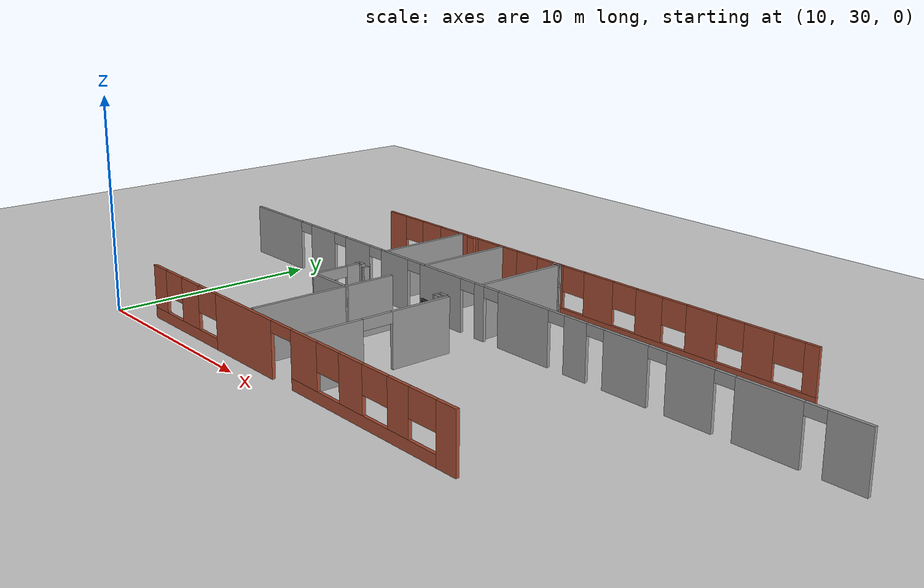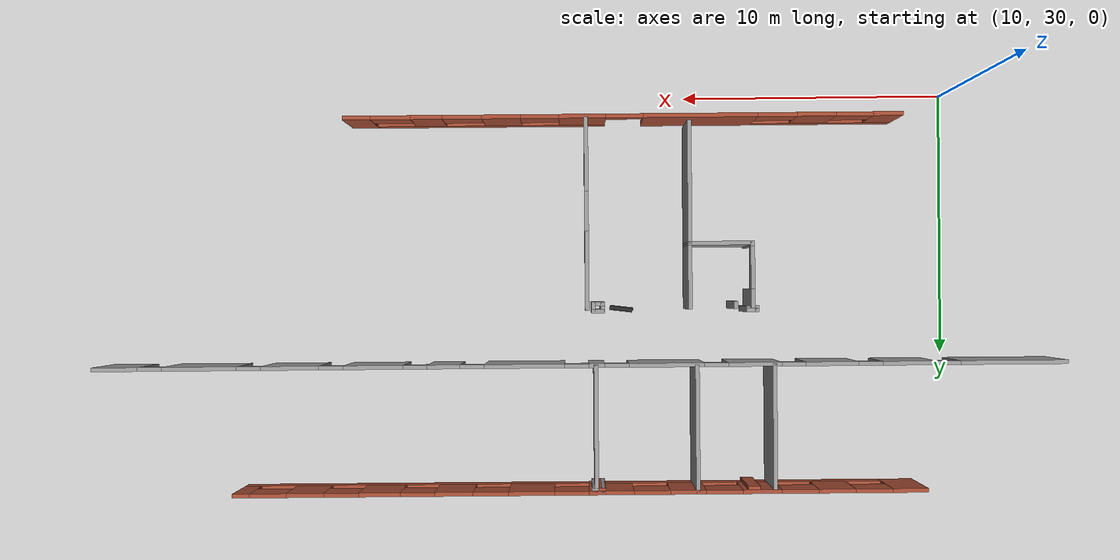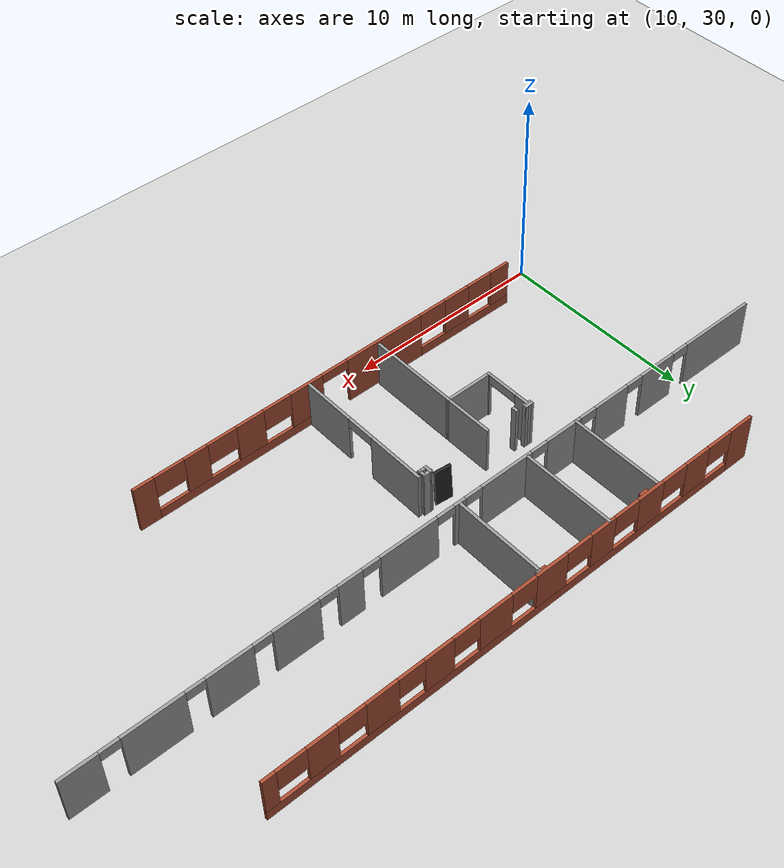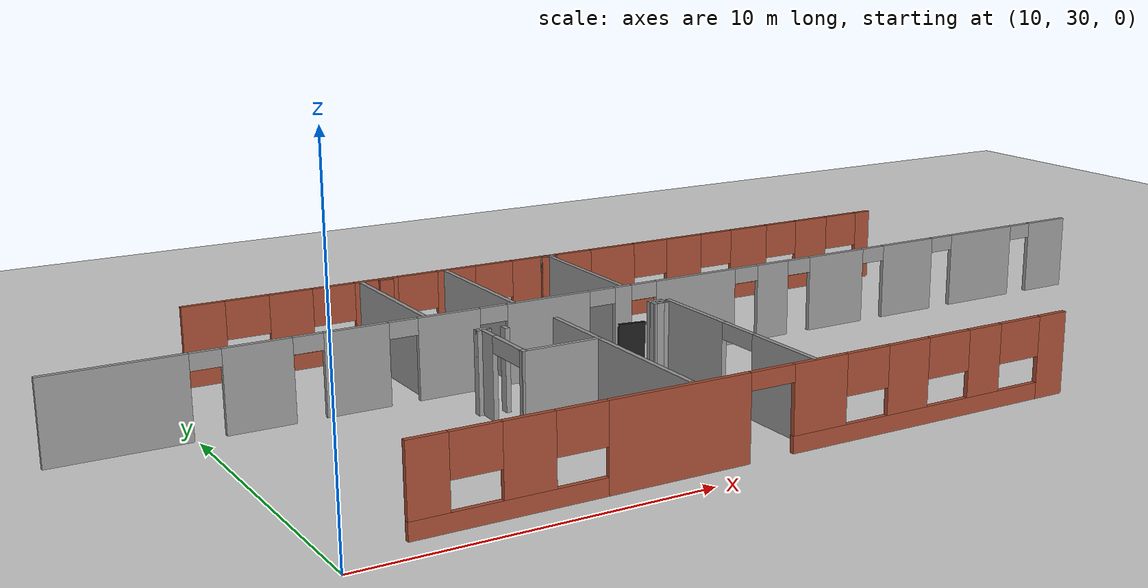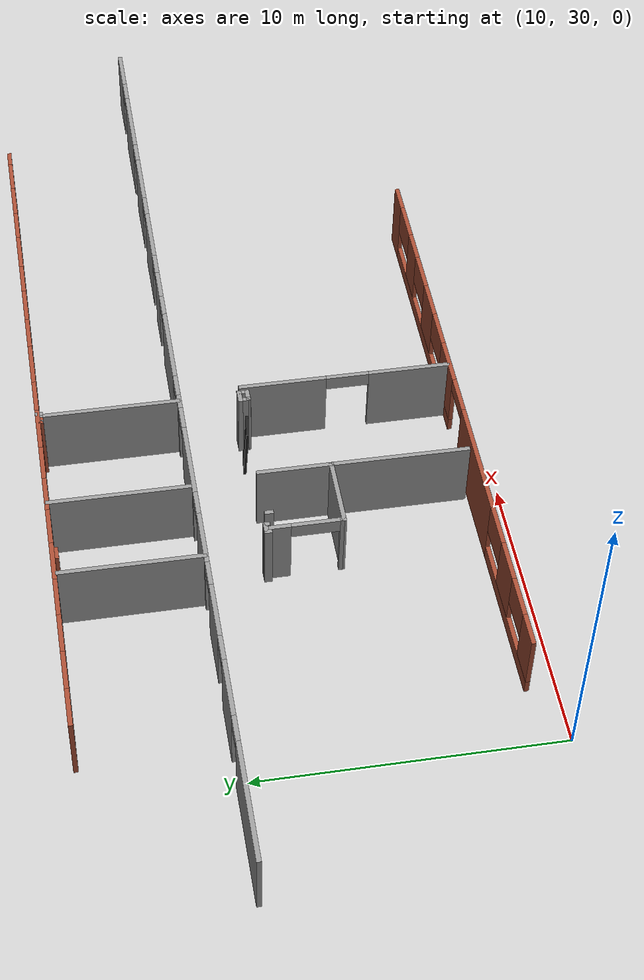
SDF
<sdf version="1.6">
 <world name="default">
  <model name="ground_plane">
   <static>1</static>
   <link name="link">
    <collision name="collision">
     <geometry><plane><normal>0 0 1</normal><size>100 100</size></plane></geometry>
     <surface><friction><ode><mu>100</mu><mu2>50</mu2></ode></friction></surface>
    </collision>
    <visual name="visual">
     <cast_shadows>0</cast_shadows>
     <geometry><plane><normal>0 0 1</normal><size>100 100</size></plane></geometry>
     <material>
      <script><uri>file://media/materials/scripts/gazebo.material</uri><name>Gazebo/Grey</name></script>
     </material>
    </visual>
   </link>
  </model>
  <model name="CVSSP">
   <pose>23.8714 24.094 0 0 -0 0</pose>
   <link name="Wall_21">
    <pose>-6.21845 12.8269 0 0 0 -1.57055</pose>
    <visual name="Wall_21_Visual_0">
     <pose>-0.893143 0 1.25 0 -0 0</pose>
     <geometry><box><size>0.719046 0.15 2.5</size></box></geometry>
     <material>
      <script><uri>file://media/materials/scripts/gazebo.material</uri><name>Gazebo/Grey</name></script>
      <ambient>0.588235 0.588235 0.588235 1</ambient>
     </material>
    </visual>
    <collision name="Wall_21_Collision_0">
     <geometry><box><size>0.719046 0.15 2.5</size></box></geometry>
     <pose>-0.893143 0 1.25 0 -0 0</pose>
    </collision>
    <visual name="Wall_21_Visual_1">
     <pose>1.15058 0 1.25 0 -0 0</pose>
     <geometry><box><size>0.204165 0.15 2.5</size></box></geometry>
     <material>
      <script><uri>file://media/materials/scripts/gazebo.material</uri><name>Gazebo/Grey</name></script>
      <ambient>0.588235 0.588235 0.588235 1</ambient>
     </material>
    </visual>
    <collision name="Wall_21_Collision_1">
     <geometry><box><size>0.204165 0.15 2.5</size></box></geometry>
     <pose>1.15058 0 1.25 0 -0 0</pose>
    </collision>
    <visual name="Wall_21_Visual_2">
     <pose>0.257441 0 2.25 0 -0 0</pose>
     <geometry><box><size>1.58212 0.15 0.5</size></box></geometry>
     <material>
      <script><uri>file://media/materials/scripts/gazebo.material</uri><name>Gazebo/Grey</name></script>
      <ambient>0.588235 0.588235 0.588235 1</ambient>
     </material>
    </visual>
    <collision name="Wall_21_Collision_2">
     <geometry><box><size>1.58212 0.15 0.5</size></box></geometry>
     <pose>0.257441 0 2.25 0 -0 0</pose>
    </collision>
   </link>
   <link name="Wall_24">
    <collision name="Wall_24_Collision">
     <geometry><box><size>2.49412 0.15 2.5</size></box></geometry>
     <pose>0 0 1.25 0 -0 0</pose>
    </collision>
    <visual name="Wall_24_Visual">
     <pose>0 0 1.25 0 -0 0</pose>
     <geometry><box><size>2.49412 0.15 2.5</size></box></geometry>
     <material>
      <script><uri>file://media/materials/scripts/gazebo.material</uri><name>Gazebo/Grey</name></script>
      <ambient>0.588235 0.588235 0.588235 1</ambient>
     </material>
    </visual>
    <pose>-5.0461 11.6485 0 0 0 -0.000618</pose>
   </link>
   <link name="Wall_25">
    <collision name="Wall_25_Collision">
     <geometry><box><size>2.54698 0.15 2.5</size></box></geometry>
     <pose>0 0 1.25 0 -0 0</pose>
    </collision>
    <visual name="Wall_25_Visual">
     <pose>0 0 1.25 0 -0 0</pose>
     <geometry><box><size>2.54698 0.15 2.5</size></box></geometry>
     <material>
      <script><uri>file://media/materials/scripts/gazebo.material</uri><name>Gazebo/Grey</name></script>
      <ambient>0.588235 0.588235 0.588235 1</ambient>
     </material>
    </visual>
    <pose>-3.87405 12.8463 0 0 -0 1.5708</pose>
   </link>
   <link name="Wall_27">
    <collision name="Wall_27_Collision">
     <geometry><box><size>4.69046 0.15 2.5</size></box></geometry>
     <pose>0 0 1.25 0 -0 0</pose>
    </collision>
    <visual name="Wall_27_Visual">
     <pose>0 0 1.25 0 -0 0</pose>
     <geometry><box><size>4.69046 0.15 2.5</size></box></geometry>
     <material>
      <script><uri>file://media/materials/scripts/gazebo.material</uri><name>Gazebo/Grey</name></script>
      <ambient>0.588235 0.588235 0.588235 1</ambient>
     </material>
    </visual>
    <pose>-3.88025 9.37755 0 0 0 -1.57353</pose>
   </link>
   <link name="Wall_29">
    <pose>-0.023055 10.5087 0 0 0 -1.5708</pose>
    <visual name="Wall_29_Visual_0">
     <pose>-2.1277 0 1.25 0 -0 0</pose>
     <geometry><box><size>2.99461 0.15 2.5</size></box></geometry>
     <material>
      <script><uri>file://media/materials/scripts/gazebo.material</uri><name>Gazebo/Grey</name></script>
      <ambient>0.588235 0.588235 0.588235 1</ambient>
     </material>
    </visual>
    <collision name="Wall_29_Collision_0">
     <geometry><box><size>2.99461 0.15 2.5</size></box></geometry>
     <pose>-2.1277 0 1.25 0 -0 0</pose>
    </collision>
    <visual name="Wall_29_Visual_1">
     <pose>2.22714 0 1.25 0 -0 0</pose>
     <geometry><box><size>2.79571 0.15 2.5</size></box></geometry>
     <material>
      <script><uri>file://media/materials/scripts/gazebo.material</uri><name>Gazebo/Grey</name></script>
      <ambient>0.588235 0.588235 0.588235 1</ambient>
     </material>
    </visual>
    <collision name="Wall_29_Collision_1">
     <geometry><box><size>2.79571 0.15 2.5</size></box></geometry>
     <pose>2.22714 0 1.25 0 -0 0</pose>
    </collision>
    <visual name="Wall_29_Visual_2">
     <pose>0.099447 0 2.25 0 -0 0</pose>
     <geometry><box><size>1.45968 0.15 0.5</size></box></geometry>
     <material>
      <script><uri>file://media/materials/scripts/gazebo.material</uri><name>Gazebo/Grey</name></script>
      <ambient>0.588235 0.588235 0.588235 1</ambient>
     </material>
    </visual>
    <collision name="Wall_29_Collision_2">
     <geometry><box><size>1.45968 0.15 0.5</size></box></geometry>
     <pose>0.099447 0 2.25 0 -0 0</pose>
    </collision>
   </link>
   <link name="Wall_303">
    <pose>0.29478 20.9408 0 0 -0 0</pose>
    <visual name="Wall_303_Visual_0">
     <pose>-12.3344 0 1.25 0 -0 0</pose>
     <geometry><box><size>1.33119 0.15 2.5</size></box></geometry>
     <material>
      <script><uri>file://media/materials/scripts/gazebo.material</uri><name>Gazebo/Bricks</name></script>
      <ambient>1 1 1 1</ambient>
     </material>
    </visual>
    <collision name="Wall_303_Collision_0">
     <geometry><box><size>1.33119 0.15 2.5</size></box></geometry>
     <pose>-12.3344 0 1.25 0 -0 0</pose>
    </collision>
    <visual name="Wall_303_Visual_1">
     <pose>0.665598 0 0.25 0 -0 0</pose>
     <geometry><box><size>24.6688 0.15 0.5</size></box></geometry>
     <material>
      <script><uri>file://media/materials/scripts/gazebo.material</uri><name>Gazebo/Bricks</name></script>
      <ambient>1 1 1 1</ambient>
     </material>
    </visual>
    <collision name="Wall_303_Collision_1">
     <geometry><box><size>24.6688 0.15 0.5</size></box></geometry>
     <pose>0.665598 0 0.25 0 -0 0</pose>
    </collision>
    <visual name="Wall_303_Visual_2">
     <pose>-9.60766 0 1.5 0 -0 0</pose>
     <geometry><box><size>1.38884 0.15 2</size></box></geometry>
     <material>
      <script><uri>file://media/materials/scripts/gazebo.material</uri><name>Gazebo/Bricks</name></script>
      <ambient>1 1 1 1</ambient>
     </material>
    </visual>
    <collision name="Wall_303_Collision_2">
     <geometry><box><size>1.38884 0.15 2</size></box></geometry>
     <pose>-9.60766 0 1.5 0 -0 0</pose>
    </collision>
    <visual name="Wall_303_Visual_3">
     <pose>-6.80389 0 1.5 0 -0 0</pose>
     <geometry><box><size>1.45124 0.15 2</size></box></geometry>
     <material>
      <script><uri>file://media/materials/scripts/gazebo.material</uri><name>Gazebo/Bricks</name></script>
      <ambient>1 1 1 1</ambient>
     </material>
    </visual>
    <collision name="Wall_303_Collision_3">
     <geometry><box><size>1.45124 0.15 2</size></box></geometry>
     <pose>-6.80389 0 1.5 0 -0 0</pose>
    </collision>
    <visual name="Wall_303_Visual_4">
     <pose>-4.03476 0 1.5 0 -0 0</pose>
     <geometry><box><size>1.34223 0.15 2</size></box></geometry>
     <material>
      <script><uri>file://media/materials/scripts/gazebo.material</uri><name>Gazebo/Bricks</name></script>
      <ambient>1 1 1 1</ambient>
     </material>
    </visual>
    <collision name="Wall_303_Collision_4">
     <geometry><box><size>1.34223 0.15 2</size></box></geometry>
     <pose>-4.03476 0 1.5 0 -0 0</pose>
    </collision>
    <visual name="Wall_303_Visual_5">
     <pose>-1.16996 0 1.5 0 -0 0</pose>
     <geometry><box><size>1.6766 0.15 2</size></box></geometry>
     <material>
      <script><uri>file://media/materials/scripts/gazebo.material</uri><name>Gazebo/Bricks</name></script>
      <ambient>1 1 1 1</ambient>
     </material>
    </visual>
    <collision name="Wall_303_Collision_5">
     <geometry><box><size>1.6766 0.15 2</size></box></geometry>
     <pose>-1.16996 0 1.5 0 -0 0</pose>
    </collision>
    <visual name="Wall_303_Visual_6">
     <pose>1.82803 0 1.5 0 -0 0</pose>
     <geometry><box><size>1.7106 0.15 2</size></box></geometry>
     <material>
      <script><uri>file://media/materials/scripts/gazebo.material</uri><name>Gazebo/Bricks</name></script>
      <ambient>1 1 1 1</ambient>
     </material>
    </visual>
    <collision name="Wall_303_Collision_6">
     <geometry><box><size>1.7106 0.15 2</size></box></geometry>
     <pose>1.82803 0 1.5 0 -0 0</pose>
    </collision>
    <visual name="Wall_303_Visual_7">
     <pose>4.72401 0 1.5 0 -0 0</pose>
     <geometry><box><size>1.43857 0.15 2</size></box></geometry>
     <material>
      <script><uri>file://media/materials/scripts/gazebo.material</uri><name>Gazebo/Bricks</name></script>
      <ambient>1 1 1 1</ambient>
     </material>
    </visual>
    <collision name="Wall_303_Collision_7">
     <geometry><box><size>1.43857 0.15 2</size></box></geometry>
     <pose>4.72401 0 1.5 0 -0 0</pose>
    </collision>
    <visual name="Wall_303_Visual_8">
     <pose>7.50097 0 1.5 0 -0 0</pose>
     <geometry><box><size>1.55192 0.15 2</size></box></geometry>
     <material>
      <script><uri>file://media/materials/scripts/gazebo.material</uri><name>Gazebo/Bricks</name></script>
      <ambient>1 1 1 1</ambient>
     </material>
    </visual>
    <collision name="Wall_303_Collision_8">
     <geometry><box><size>1.55192 0.15 2</size></box></geometry>
     <pose>7.50097 0 1.5 0 -0 0</pose>
    </collision>
    <visual name="Wall_303_Visual_9">
     <pose>10.2921 0 1.5 0 -0 0</pose>
     <geometry><box><size>1.3989 0.15 2</size></box></geometry>
     <material>
      <script><uri>file://media/materials/scripts/gazebo.material</uri><name>Gazebo/Bricks</name></script>
      <ambient>1 1 1 1</ambient>
     </material>
    </visual>
    <collision name="Wall_303_Collision_9">
     <geometry><box><size>1.3989 0.15 2</size></box></geometry>
     <pose>10.2921 0 1.5 0 -0 0</pose>
    </collision>
    <visual name="Wall_303_Visual_10">
     <pose>12.682 0 1.5 0 -0 0</pose>
     <geometry><box><size>0.636054 0.15 2</size></box></geometry>
     <material>
      <script><uri>file://media/materials/scripts/gazebo.material</uri><name>Gazebo/Bricks</name></script>
      <ambient>1 1 1 1</ambient>
     </material>
    </visual>
    <collision name="Wall_303_Collision_10">
     <geometry><box><size>0.636054 0.15 2</size></box></geometry>
     <pose>12.682 0 1.5 0 -0 0</pose>
    </collision>
    <visual name="Wall_303_Visual_11">
     <pose>-10.9854 0 1.9 0 -0 0</pose>
     <geometry><box><size>1.36673 0.15 1.2</size></box></geometry>
     <material>
      <script><uri>file://media/materials/scripts/gazebo.material</uri><name>Gazebo/Bricks</name></script>
      <ambient>1 1 1 1</ambient>
     </material>
    </visual>
    <collision name="Wall_303_Collision_11">
     <geometry><box><size>1.36673 0.15 1.2</size></box></geometry>
     <pose>-10.9854 0 1.9 0 -0 0</pose>
    </collision>
    <visual name="Wall_303_Visual_12">
     <pose>-8.22138 0 1.9 0 -0 0</pose>
     <geometry><box><size>1.38373 0.15 1.2</size></box></geometry>
     <material>
      <script><uri>file://media/materials/scripts/gazebo.material</uri><name>Gazebo/Bricks</name></script>
      <ambient>1 1 1 1</ambient>
     </material>
    </visual>
    <collision name="Wall_303_Collision_12">
     <geometry><box><size>1.38373 0.15 1.2</size></box></geometry>
     <pose>-8.22138 0 1.9 0 -0 0</pose>
    </collision>
    <visual name="Wall_303_Visual_13">
     <pose>-5.39208 0 1.9 0 -0 0</pose>
     <geometry><box><size>1.37239 0.15 1.2</size></box></geometry>
     <material>
      <script><uri>file://media/materials/scripts/gazebo.material</uri><name>Gazebo/Bricks</name></script>
      <ambient>1 1 1 1</ambient>
     </material>
    </visual>
    <collision name="Wall_303_Collision_13">
     <geometry><box><size>1.37239 0.15 1.2</size></box></geometry>
     <pose>-5.39208 0 1.9 0 -0 0</pose>
    </collision>
    <visual name="Wall_303_Visual_14">
     <pose>-2.68595 0 1.9 0 -0 0</pose>
     <geometry><box><size>1.35539 0.15 1.2</size></box></geometry>
     <material>
      <script><uri>file://media/materials/scripts/gazebo.material</uri><name>Gazebo/Bricks</name></script>
      <ambient>1 1 1 1</ambient>
     </material>
    </visual>
    <collision name="Wall_303_Collision_14">
     <geometry><box><size>1.35539 0.15 1.2</size></box></geometry>
     <pose>-2.68595 0 1.9 0 -0 0</pose>
    </collision>
    <visual name="Wall_303_Visual_15">
     <pose>0.320535 0 1.9 0 -0 0</pose>
     <geometry><box><size>1.30439 0.15 1.2</size></box></geometry>
     <material>
      <script><uri>file://media/materials/scripts/gazebo.material</uri><name>Gazebo/Bricks</name></script>
      <ambient>1 1 1 1</ambient>
     </material>
    </visual>
    <collision name="Wall_303_Collision_15">
     <geometry><box><size>1.30439 0.15 1.2</size></box></geometry>
     <pose>0.320535 0 1.9 0 -0 0</pose>
    </collision>
    <visual name="Wall_303_Visual_16">
     <pose>3.34402 0 1.9 0 -0 0</pose>
     <geometry><box><size>1.32139 0.15 1.2</size></box></geometry>
     <material>
      <script><uri>file://media/materials/scripts/gazebo.material</uri><name>Gazebo/Bricks</name></script>
      <ambient>1 1 1 1</ambient>
     </material>
    </visual>
    <collision name="Wall_303_Collision_16">
     <geometry><box><size>1.32139 0.15 1.2</size></box></geometry>
     <pose>3.34402 0 1.9 0 -0 0</pose>
    </collision>
    <visual name="Wall_303_Visual_17">
     <pose>6.08415 0 1.9 0 -0 0</pose>
     <geometry><box><size>1.28172 0.15 1.2</size></box></geometry>
     <material>
      <script><uri>file://media/materials/scripts/gazebo.material</uri><name>Gazebo/Bricks</name></script>
      <ambient>1 1 1 1</ambient>
     </material>
    </visual>
    <collision name="Wall_303_Collision_17">
     <geometry><box><size>1.28172 0.15 1.2</size></box></geometry>
     <pose>6.08415 0 1.9 0 -0 0</pose>
    </collision>
    <visual name="Wall_303_Visual_18">
     <pose>8.93479 0 1.9 0 -0 0</pose>
     <geometry><box><size>1.31572 0.15 1.2</size></box></geometry>
     <material>
      <script><uri>file://media/materials/scripts/gazebo.material</uri><name>Gazebo/Bricks</name></script>
      <ambient>1 1 1 1</ambient>
     </material>
    </visual>
    <collision name="Wall_303_Collision_18">
     <geometry><box><size>1.31572 0.15 1.2</size></box></geometry>
     <pose>8.93479 0 1.9 0 -0 0</pose>
    </collision>
    <visual name="Wall_303_Visual_19">
     <pose>11.6777 0 1.9 0 -0 0</pose>
     <geometry><box><size>1.37239 0.15 1.2</size></box></geometry>
     <material>
      <script><uri>file://media/materials/scripts/gazebo.material</uri><name>Gazebo/Bricks</name></script>
      <ambient>1 1 1 1</ambient>
     </material>
    </visual>
    <collision name="Wall_303_Collision_19">
     <geometry><box><size>1.37239 0.15 1.2</size></box></geometry>
     <pose>11.6777 0 1.9 0 -0 0</pose>
    </collision>
   </link>
   <link name="Wall_315">
    <collision name="Wall_315_Collision">
     <geometry><box><size>4.75 0.15 2.5</size></box></geometry>
     <pose>0 0 1.25 0 -0 0</pose>
    </collision>
    <visual name="Wall_315_Visual">
     <pose>0 0 1.25 0 -0 0</pose>
     <geometry><box><size>4.75 0.15 2.5</size></box></geometry>
     <material>
      <script><uri>file://media/materials/scripts/gazebo.material</uri><name>Gazebo/Grey</name></script>
      <ambient>0.588235 0.588235 0.588235 1</ambient>
     </material>
    </visual>
    <pose>-7.00685 18.5251 0 0 -0 1.5708</pose>
   </link>
   <link name="Wall_318">
    <collision name="Wall_318_Collision">
     <geometry><box><size>4.79 0.15 2.5</size></box></geometry>
     <pose>0 0 1.25 0 -0 0</pose>
    </collision>
    <visual name="Wall_318_Visual">
     <pose>0 0 1.25 0 -0 0</pose>
     <geometry><box><size>4.79 0.15 2.5</size></box></geometry>
     <material>
      <script><uri>file://media/materials/scripts/gazebo.material</uri><name>Gazebo/Grey</name></script>
      <ambient>1 1 1 1</ambient>
     </material>
    </visual>
    <pose>-4.1133 18.5854 0 0 0 -1.5708</pose>
   </link>
   <link name="Wall_320">
    <collision name="Wall_320_Collision">
     <geometry><box><size>4.75 0.15 2.5</size></box></geometry>
     <pose>0 0 1.25 0 -0 0</pose>
    </collision>
    <visual name="Wall_320_Visual">
     <pose>0 0 1.25 0 -0 0</pose>
     <geometry><box><size>4.75 0.15 2.5</size></box></geometry>
     <material>
      <script><uri>file://media/materials/scripts/gazebo.material</uri><name>Gazebo/Grey</name></script>
      <ambient>0.588235 0.588235 0.588235 1</ambient>
     </material>
    </visual>
    <pose>-0.323303 18.5354 0 0 -0 1.5708</pose>
   </link>
   <link name="Wall_326">
    <collision name="Wall_326_Collision">
     <geometry><box><size>0.41 0.15 2.5</size></box></geometry>
     <pose>0 0 1.25 0 -0 0</pose>
    </collision>
    <visual name="Wall_326_Visual">
     <pose>0 0 1.25 0 -0 0</pose>
     <geometry><box><size>0.41 0.15 2.5</size></box></geometry>
     <material>
      <script><uri>file://media/materials/scripts/gazebo.material</uri><name>Gazebo/Bricks</name></script>
      <ambient>1 1 1 1</ambient>
     </material>
    </visual>
    <pose>-0.453303 20.8354 0 0 -0 3.14159</pose>
   </link>
   <link name="Wall_327">
    <collision name="Wall_327_Collision">
     <geometry><box><size>0.25 0.15 2.5</size></box></geometry>
     <pose>0 0 1.25 0 -0 0</pose>
    </collision>
    <visual name="Wall_327_Visual">
     <pose>0 0 1.25 0 -0 0</pose>
     <geometry><box><size>0.25 0.15 2.5</size></box></geometry>
     <material>
      <script><uri>file://media/materials/scripts/gazebo.material</uri><name>Gazebo/Grey</name></script>
      <ambient>1 1 1 1</ambient>
     </material>
    </visual>
    <pose>-0.583303 20.8854 0 0 -0 1.5708</pose>
   </link>
   <link name="Wall_329">
    <collision name="Wall_329_Collision">
     <geometry><box><size>0.25 0.15 2.5</size></box></geometry>
     <pose>0 0 1.25 0 -0 0</pose>
    </collision>
    <visual name="Wall_329_Visual">
     <pose>0 0 1.25 0 -0 0</pose>
     <geometry><box><size>0.25 0.15 2.5</size></box></geometry>
     <material>
      <script><uri>file://media/materials/scripts/gazebo.material</uri><name>Gazebo/Grey</name></script>
      <ambient>1 1 1 1</ambient>
     </material>
    </visual>
    <pose>-0.273303 20.8354 0 0 -0 0</pose>
   </link>
   <link name="Wall_330">
    <collision name="Wall_330_Collision">
     <geometry><box><size>0.25 0.15 2.5</size></box></geometry>
     <pose>0 0 1.25 0 -0 0</pose>
    </collision>
    <visual name="Wall_330_Visual">
     <pose>0 0 1.25 0 -0 0</pose>
     <geometry><box><size>0.25 0.15 2.5</size></box></geometry>
     <material>
      <script><uri>file://media/materials/scripts/gazebo.material</uri><name>Gazebo/Grey</name></script>
      <ambient>1 1 1 1</ambient>
     </material>
    </visual>
    <pose>-0.223303 20.8854 0 0 -0 1.5708</pose>
   </link>
   <link name="Wall_46">
    <pose>-1.40579 6.86917 0 0 -0 3.14155</pose>
    <visual name="Wall_46_Visual_0">
     <pose>-9.95927 0 1.25 0 -0 0</pose>
     <geometry><box><size>1.03804 0.15 2.5</size></box></geometry>
     <material>
      <script><uri>file://media/materials/scripts/gazebo.material</uri><name>Gazebo/Bricks</name></script>
      <ambient>1 1 1 1</ambient>
     </material>
    </visual>
    <collision name="Wall_46_Collision_0">
     <geometry><box><size>1.03804 0.15 2.5</size></box></geometry>
     <pose>-9.95927 0 1.25 0 -0 0</pose>
    </collision>
    <visual name="Wall_46_Visual_1">
     <pose>2.91124 0 1.25 0 -0 0</pose>
     <geometry><box><size>4.28444 0.15 2.5</size></box></geometry>
     <material>
      <script><uri>file://media/materials/scripts/gazebo.material</uri><name>Gazebo/Bricks</name></script>
      <ambient>1 1 1 1</ambient>
     </material>
    </visual>
    <collision name="Wall_46_Collision_1">
     <geometry><box><size>4.28444 0.15 2.5</size></box></geometry>
     <pose>2.91124 0 1.25 0 -0 0</pose>
    </collision>
    <visual name="Wall_46_Visual_2">
     <pose>-5.03718 0 0.25 0 -0 0</pose>
     <geometry><box><size>8.80612 0.15 0.5</size></box></geometry>
     <material>
      <script><uri>file://media/materials/scripts/gazebo.material</uri><name>Gazebo/Bricks</name></script>
      <ambient>1 1 1 1</ambient>
     </material>
    </visual>
    <collision name="Wall_46_Collision_2">
     <geometry><box><size>8.80612 0.15 0.5</size></box></geometry>
     <pose>-5.03718 0 0.25 0 -0 0</pose>
    </collision>
    <visual name="Wall_46_Visual_3">
     <pose>7.76588 0 0.25 0 -0 0</pose>
     <geometry><box><size>5.42482 0.15 0.5</size></box></geometry>
     <material>
      <script><uri>file://media/materials/scripts/gazebo.material</uri><name>Gazebo/Bricks</name></script>
      <ambient>1 1 1 1</ambient>
     </material>
    </visual>
    <collision name="Wall_46_Collision_3">
     <geometry><box><size>5.42482 0.15 0.5</size></box></geometry>
     <pose>7.76588 0 0.25 0 -0 0</pose>
    </collision>
    <visual name="Wall_46_Visual_4">
     <pose>-7.35036 0 1.5 0 -0 0</pose>
     <geometry><box><size>1.1891 0.15 2</size></box></geometry>
     <material>
      <script><uri>file://media/materials/scripts/gazebo.material</uri><name>Gazebo/Bricks</name></script>
      <ambient>1 1 1 1</ambient>
     </material>
    </visual>
    <collision name="Wall_46_Collision_4">
     <geometry><box><size>1.1891 0.15 2</size></box></geometry>
     <pose>-7.35036 0 1.5 0 -0 0</pose>
    </collision>
    <visual name="Wall_46_Visual_5">
     <pose>-4.55193 0 1.5 0 -0 0</pose>
     <geometry><box><size>1.43988 0.15 2</size></box></geometry>
     <material>
      <script><uri>file://media/materials/scripts/gazebo.material</uri><name>Gazebo/Bricks</name></script>
      <ambient>1 1 1 1</ambient>
     </material>
    </visual>
    <collision name="Wall_46_Collision_5">
     <geometry><box><size>1.43988 0.15 2</size></box></geometry>
     <pose>-4.55193 0 1.5 0 -0 0</pose>
    </collision>
    <visual name="Wall_46_Visual_6">
     <pose>-1.51388 0 1.5 0 -0 0</pose>
     <geometry><box><size>1.75953 0.15 2</size></box></geometry>
     <material>
      <script><uri>file://media/materials/scripts/gazebo.material</uri><name>Gazebo/Bricks</name></script>
      <ambient>1 1 1 1</ambient>
     </material>
    </visual>
    <collision name="Wall_46_Collision_6">
     <geometry><box><size>1.75953 0.15 2</size></box></geometry>
     <pose>-1.51388 0 1.5 0 -0 0</pose>
    </collision>
    <visual name="Wall_46_Visual_7">
     <pose>-1.51388 0 1.5 0 -0 0</pose>
     <geometry><box><size>1.75953 0.15 2</size></box></geometry>
     <material>
      <script><uri>file://media/materials/scripts/gazebo.material</uri><name>Gazebo/Bricks</name></script>
      <ambient>1 1 1 1</ambient>
     </material>
    </visual>
    <collision name="Wall_46_Collision_7">
     <geometry><box><size>1.75953 0.15 2</size></box></geometry>
     <pose>-1.51388 0 1.5 0 -0 0</pose>
    </collision>
    <visual name="Wall_46_Visual_8">
     <pose>7.24439 0 1.5 0 -0 0</pose>
     <geometry><box><size>1.44818 0.15 2</size></box></geometry>
     <material>
      <script><uri>file://media/materials/scripts/gazebo.material</uri><name>Gazebo/Bricks</name></script>
      <ambient>1 1 1 1</ambient>
     </material>
    </visual>
    <collision name="Wall_46_Collision_8">
     <geometry><box><size>1.44818 0.15 2</size></box></geometry>
     <pose>7.24439 0 1.5 0 -0 0</pose>
    </collision>
    <visual name="Wall_46_Visual_9">
     <pose>9.92244 0 1.5 0 -0 0</pose>
     <geometry><box><size>1.1117 0.15 2</size></box></geometry>
     <material>
      <script><uri>file://media/materials/scripts/gazebo.material</uri><name>Gazebo/Bricks</name></script>
      <ambient>1 1 1 1</ambient>
     </material>
    </visual>
    <collision name="Wall_46_Collision_9">
     <geometry><box><size>1.1117 0.15 2</size></box></geometry>
     <pose>9.92244 0 1.5 0 -0 0</pose>
    </collision>
    <visual name="Wall_46_Visual_10">
     <pose>-8.69258 0 1.9 0 -0 0</pose>
     <geometry><box><size>1.49533 0.15 1.2</size></box></geometry>
     <material>
      <script><uri>file://media/materials/scripts/gazebo.material</uri><name>Gazebo/Bricks</name></script>
      <ambient>1 1 1 1</ambient>
     </material>
    </visual>
    <collision name="Wall_46_Collision_10">
     <geometry><box><size>1.49533 0.15 1.2</size></box></geometry>
     <pose>-8.69258 0 1.9 0 -0 0</pose>
    </collision>
    <visual name="Wall_46_Visual_11">
     <pose>5.78688 0 1.9 0 -0 0</pose>
     <geometry><box><size>1.46684 0.15 1.2</size></box></geometry>
     <material>
      <script><uri>file://media/materials/scripts/gazebo.material</uri><name>Gazebo/Bricks</name></script>
      <ambient>1 1 1 1</ambient>
     </material>
    </visual>
    <collision name="Wall_46_Collision_11">
     <geometry><box><size>1.46684 0.15 1.2</size></box></geometry>
     <pose>5.78688 0 1.9 0 -0 0</pose>
    </collision>
    <visual name="Wall_46_Visual_12">
     <pose>-6.01384 0 1.9 0 -0 0</pose>
     <geometry><box><size>1.48394 0.15 1.2</size></box></geometry>
     <material>
      <script><uri>file://media/materials/scripts/gazebo.material</uri><name>Gazebo/Bricks</name></script>
      <ambient>1 1 1 1</ambient>
     </material>
    </visual>
    <collision name="Wall_46_Collision_12">
     <geometry><box><size>1.48394 0.15 1.2</size></box></geometry>
     <pose>-6.01384 0 1.9 0 -0 0</pose>
    </collision>
    <visual name="Wall_46_Visual_13">
     <pose>-3.11282 0 1.9 0 -0 0</pose>
     <geometry><box><size>1.43834 0.15 1.2</size></box></geometry>
     <material>
      <script><uri>file://media/materials/scripts/gazebo.material</uri><name>Gazebo/Bricks</name></script>
      <ambient>1 1 1 1</ambient>
     </material>
    </visual>
    <collision name="Wall_46_Collision_13">
     <geometry><box><size>1.43834 0.15 1.2</size></box></geometry>
     <pose>-3.11282 0 1.9 0 -0 0</pose>
    </collision>
    <visual name="Wall_46_Visual_14">
     <pose>8.66753 0 1.9 0 -0 0</pose>
     <geometry><box><size>1.39811 0.15 1.2</size></box></geometry>
     <material>
      <script><uri>file://media/materials/scripts/gazebo.material</uri><name>Gazebo/Bricks</name></script>
      <ambient>1 1 1 1</ambient>
     </material>
    </visual>
    <collision name="Wall_46_Collision_14">
     <geometry><box><size>1.39811 0.15 1.2</size></box></geometry>
     <pose>8.66753 0 1.9 0 -0 0</pose>
    </collision>
    <visual name="Wall_46_Visual_15">
     <pose>0.067453 0 2.25 0 -0 0</pose>
     <geometry><box><size>1.40314 0.15 0.5</size></box></geometry>
     <material>
      <script><uri>file://media/materials/scripts/gazebo.material</uri><name>Gazebo/Bricks</name></script>
      <ambient>1 1 1 1</ambient>
     </material>
    </visual>
    <collision name="Wall_46_Collision_15">
     <geometry><box><size>1.40314 0.15 0.5</size></box></geometry>
     <pose>0.067453 0 2.25 0 -0 0</pose>
    </collision>
    <visual name="Wall_46_Visual_16">
     <pose>0.067453 0 2.25 0 -0 0</pose>
     <geometry><box><size>1.40314 0.15 0.5</size></box></geometry>
     <material>
      <script><uri>file://media/materials/scripts/gazebo.material</uri><name>Gazebo/Bricks</name></script>
      <ambient>1 1 1 1</ambient>
     </material>
    </visual>
    <collision name="Wall_46_Collision_16">
     <geometry><box><size>1.40314 0.15 0.5</size></box></geometry>
     <pose>0.067453 0 2.25 0 -0 0</pose>
    </collision>
   </link>
   <link name="Wall_619">
    <collision name="Wall_619_Collision">
     <geometry><box><size>0.491176 0.15 2.5</size></box></geometry>
     <pose>0 0 1.25 0 -0 0</pose>
    </collision>
    <visual name="Wall_619_Visual">
     <pose>0 0 1.25 0 -0 0</pose>
     <geometry><box><size>0.491176 0.15 2.5</size></box></geometry>
     <material>
      <script><uri>file://media/materials/scripts/gazebo.material</uri><name>Gazebo/Grey</name></script>
      <ambient>1 1 1 1</ambient>
     </material>
    </visual>
    <pose>-0.431731 14.1578 0 0 -0 0</pose>
   </link>
   <link name="Wall_620">
    <collision name="Wall_620_Collision">
     <geometry><box><size>0.421785 0.15 2.5</size></box></geometry>
     <pose>0 0 1.25 0 -0 0</pose>
    </collision>
    <visual name="Wall_620_Visual">
     <pose>0 0 1.25 0 -0 0</pose>
     <geometry><box><size>0.421785 0.15 2.5</size></box></geometry>
     <material>
      <script><uri>file://media/materials/scripts/gazebo.material</uri><name>Gazebo/Grey</name></script>
      <ambient>1 1 1 1</ambient>
     </material>
    </visual>
    <pose>-0.261143 14.0219 0 0 0 -1.5708</pose>
   </link>
   <link name="Wall_621">
    <collision name="Wall_621_Collision">
     <geometry><box><size>0.479611 0.15 2.5</size></box></geometry>
     <pose>0 0 1.25 0 -0 0</pose>
    </collision>
    <visual name="Wall_621_Visual">
     <pose>0 0 1.25 0 -0 0</pose>
     <geometry><box><size>0.479611 0.15 2.5</size></box></geometry>
     <material>
      <script><uri>file://media/materials/scripts/gazebo.material</uri><name>Gazebo/Grey</name></script>
      <ambient>1 1 1 1</ambient>
     </material>
    </visual>
    <pose>-0.425949 13.8861 0 0 -0 3.14159</pose>
   </link>
   <link name="Wall_622">
    <collision name="Wall_622_Collision">
     <geometry><box><size>0.421846 0.15 2.5</size></box></geometry>
     <pose>0 0 1.25 0 -0 0</pose>
    </collision>
    <visual name="Wall_622_Visual">
     <pose>0 0 1.25 0 -0 0</pose>
     <geometry><box><size>0.421846 0.15 2.5</size></box></geometry>
     <material>
      <script><uri>file://media/materials/scripts/gazebo.material</uri><name>Gazebo/Grey</name></script>
      <ambient>1 1 1 1</ambient>
     </material>
    </visual>
    <pose>-0.593646 14.0219 0 0 -0 1.59207</pose>
   </link>
   <link name="Wall_624">
    <collision name="Wall_624_Collision">
     <geometry><box><size>0.291595 0.15 2.5</size></box></geometry>
     <pose>0 0 1.25 0 -0 0</pose>
    </collision>
    <visual name="Wall_624_Visual">
     <pose>0 0 1.25 0 -0 0</pose>
     <geometry><box><size>0.291595 0.15 2.5</size></box></geometry>
     <material>
      <script><uri>file://media/materials/scripts/gazebo.material</uri><name>Gazebo/Grey</name></script>
      <ambient>1 1 1 1</ambient>
     </material>
    </visual>
    <pose>-5.57863 13.9687 0 0 0 -1.5708</pose>
   </link>
   <link name="Wall_628">
    <collision name="Wall_628_Collision">
     <geometry><box><size>0.251643 0.15 2.5</size></box></geometry>
     <pose>0 0 1.25 0 -0 0</pose>
    </collision>
    <visual name="Wall_628_Visual">
     <pose>0 0 1.25 0 -0 0</pose>
     <geometry><box><size>0.251643 0.15 2.5</size></box></geometry>
     <material>
      <script><uri>file://media/materials/scripts/gazebo.material</uri><name>Gazebo/Grey</name></script>
      <ambient>1 1 1 1</ambient>
     </material>
    </visual>
    <pose>-6.3574 14.1103 0 0 -0 1.5708</pose>
   </link>
   <link name="Wall_629">
    <collision name="Wall_629_Collision">
     <geometry><box><size>0.453417 0.15 2.5</size></box></geometry>
     <pose>0 0 1.25 0 -0 0</pose>
    </collision>
    <visual name="Wall_629_Visual">
     <pose>0 0 1.25 0 -0 0</pose>
     <geometry><box><size>0.453417 0.15 2.5</size></box></geometry>
     <material>
      <script><uri>file://media/materials/scripts/gazebo.material</uri><name>Gazebo/Grey</name></script>
      <ambient>1 1 1 1</ambient>
     </material>
    </visual>
    <pose>-6.20569 14.1608 0 0 -0 0</pose>
   </link>
   <link name="Wall_630">
    <collision name="Wall_630_Collision">
     <geometry><box><size>0.220797 0.15 2.5</size></box></geometry>
     <pose>0 0 1.25 0 -0 0</pose>
    </collision>
    <visual name="Wall_630_Visual">
     <pose>0 0 1.25 0 -0 0</pose>
     <geometry><box><size>0.220797 0.15 2.5</size></box></geometry>
     <material>
      <script><uri>file://media/materials/scripts/gazebo.material</uri><name>Gazebo/Grey</name></script>
      <ambient>1 1 1 1</ambient>
     </material>
    </visual>
    <pose>-6.05398 14.1255 0 0 0 -1.5708</pose>
   </link>
   <link name="Wall_663">
    <collision name="Wall_663_Collision">
     <geometry><box><size>0.456076 0.15 2.5</size></box></geometry>
     <pose>0 0 1.25 0 -0 0</pose>
    </collision>
    <visual name="Wall_663_Visual">
     <pose>0 0 1.25 0 -0 0</pose>
     <geometry><box><size>0.456076 0.15 2.5</size></box></geometry>
     <material>
      <script><uri>file://media/materials/scripts/gazebo.material</uri><name>Gazebo/Bricks</name></script>
      <ambient>1 1 1 1</ambient>
     </material>
    </visual>
    <pose>-6.21292 20.8145 0 0 -0 0</pose>
   </link>
   <link name="Wall_70">
    <pose>0.280393 16.1874 0 0 -0 3.14159</pose>
    <visual name="Wall_70_Visual_0">
     <pose>-17.3872 0 1.25 0 -0 0</pose>
     <geometry><box><size>1.72569 0.15 2.5</size></box></geometry>
     <material>
      <script><uri>file://media/materials/scripts/gazebo.material</uri><name>Gazebo/Grey</name></script>
      <ambient>0.588235 0.588235 0.588235 1</ambient>
     </material>
    </visual>
    <collision name="Wall_70_Collision_0">
     <geometry><box><size>1.72569 0.15 2.5</size></box></geometry>
     <pose>-17.3872 0 1.25 0 -0 0</pose>
    </collision>
    <visual name="Wall_70_Visual_1">
     <pose>-14.2239 0 1.25 0 -0 0</pose>
     <geometry><box><size>2.8009 0.15 2.5</size></box></geometry>
     <material>
      <script><uri>file://media/materials/scripts/gazebo.material</uri><name>Gazebo/Grey</name></script>
      <ambient>0.588235 0.588235 0.588235 1</ambient>
     </material>
    </visual>
    <collision name="Wall_70_Collision_1">
     <geometry><box><size>2.8009 0.15 2.5</size></box></geometry>
     <pose>-14.2239 0 1.25 0 -0 0</pose>
    </collision>
    <visual name="Wall_70_Visual_2">
     <pose>-10.8352 0 1.25 0 -0 0</pose>
     <geometry><box><size>2.17637 0.15 2.5</size></box></geometry>
     <material>
      <script><uri>file://media/materials/scripts/gazebo.material</uri><name>Gazebo/Grey</name></script>
      <ambient>0.588235 0.588235 0.588235 1</ambient>
     </material>
    </visual>
    <collision name="Wall_70_Collision_2">
     <geometry><box><size>2.17637 0.15 2.5</size></box></geometry>
     <pose>-10.8352 0 1.25 0 -0 0</pose>
    </collision>
    <visual name="Wall_70_Visual_3">
     <pose>-7.72416 0 1.25 0 -0 0</pose>
     <geometry><box><size>2.24576 0.15 2.5</size></box></geometry>
     <material>
      <script><uri>file://media/materials/scripts/gazebo.material</uri><name>Gazebo/Grey</name></script>
      <ambient>0.588235 0.588235 0.588235 1</ambient>
     </material>
    </visual>
    <collision name="Wall_70_Collision_3">
     <geometry><box><size>2.24576 0.15 2.5</size></box></geometry>
     <pose>-7.72416 0 1.25 0 -0 0</pose>
    </collision>
    <visual name="Wall_70_Visual_4">
     <pose>-5.08727 0 1.25 0 -0 0</pose>
     <geometry><box><size>1.22802 0.15 2.5</size></box></geometry>
     <material>
      <script><uri>file://media/materials/scripts/gazebo.material</uri><name>Gazebo/Grey</name></script>
      <ambient>0.588235 0.588235 0.588235 1</ambient>
     </material>
    </visual>
    <collision name="Wall_70_Collision_4">
     <geometry><box><size>1.22802 0.15 2.5</size></box></geometry>
     <pose>-5.08727 0 1.25 0 -0 0</pose>
    </collision>
    <visual name="Wall_70_Visual_5">
     <pose>-2.06873 0 1.25 0 -0 0</pose>
     <geometry><box><size>3.00907 0.15 2.5</size></box></geometry>
     <material>
      <script><uri>file://media/materials/scripts/gazebo.material</uri><name>Gazebo/Grey</name></script>
      <ambient>0.588235 0.588235 0.588235 1</ambient>
     </material>
    </visual>
    <collision name="Wall_70_Collision_5">
     <geometry><box><size>3.00907 0.15 2.5</size></box></geometry>
     <pose>-2.06873 0 1.25 0 -0 0</pose>
    </collision>
    <visual name="Wall_70_Visual_6">
     <pose>0.637556 0 1.25 0 -0 0</pose>
     <geometry><box><size>0.60349 0.15 2.5</size></box></geometry>
     <material>
      <script><uri>file://media/materials/scripts/gazebo.material</uri><name>Gazebo/Grey</name></script>
      <ambient>0.588235 0.588235 0.588235 1</ambient>
     </material>
    </visual>
    <collision name="Wall_70_Collision_6">
     <geometry><box><size>0.60349 0.15 2.5</size></box></geometry>
     <pose>0.637556 0 1.25 0 -0 0</pose>
    </collision>
    <visual name="Wall_70_Visual_7">
     <pose>3.25131 0 1.25 0 -0 0</pose>
     <geometry><box><size>2.82403 0.15 2.5</size></box></geometry>
     <material>
      <script><uri>file://media/materials/scripts/gazebo.material</uri><name>Gazebo/Grey</name></script>
      <ambient>0.588235 0.588235 0.588235 1</ambient>
     </material>
    </visual>
    <collision name="Wall_70_Collision_7">
     <geometry><box><size>2.82403 0.15 2.5</size></box></geometry>
     <pose>3.25131 0 1.25 0 -0 0</pose>
    </collision>
    <visual name="Wall_70_Visual_8">
     <pose>6.55899 0 1.25 0 -0 0</pose>
     <geometry><box><size>1.99133 0.15 2.5</size></box></geometry>
     <material>
      <script><uri>file://media/materials/scripts/gazebo.material</uri><name>Gazebo/Grey</name></script>
      <ambient>0.588235 0.588235 0.588235 1</ambient>
     </material>
    </visual>
    <collision name="Wall_70_Collision_8">
     <geometry><box><size>1.99133 0.15 2.5</size></box></geometry>
     <pose>6.55899 0 1.25 0 -0 0</pose>
    </collision>
    <visual name="Wall_70_Visual_9">
     <pose>9.43875 0 1.25 0 -0 0</pose>
     <geometry><box><size>1.9682 0.15 2.5</size></box></geometry>
     <material>
      <script><uri>file://media/materials/scripts/gazebo.material</uri><name>Gazebo/Grey</name></script>
      <ambient>0.588235 0.588235 0.588235 1</ambient>
     </material>
    </visual>
    <collision name="Wall_70_Collision_9">
     <geometry><box><size>1.9682 0.15 2.5</size></box></geometry>
     <pose>9.43875 0 1.25 0 -0 0</pose>
    </collision>
    <visual name="Wall_70_Visual_10">
     <pose>12.3301 0 1.25 0 -0 0</pose>
     <geometry><box><size>2.01446 0.15 2.5</size></box></geometry>
     <material>
      <script><uri>file://media/materials/scripts/gazebo.material</uri><name>Gazebo/Grey</name></script>
      <ambient>0.588235 0.588235 0.588235 1</ambient>
     </material>
    </visual>
    <collision name="Wall_70_Collision_10">
     <geometry><box><size>2.01446 0.15 2.5</size></box></geometry>
     <pose>12.3301 0 1.25 0 -0 0</pose>
    </collision>
    <visual name="Wall_70_Visual_11">
     <pose>16.2437 0 1.25 0 -0 0</pose>
     <geometry><box><size>4.01269 0.15 2.5</size></box></geometry>
     <material>
      <script><uri>file://media/materials/scripts/gazebo.material</uri><name>Gazebo/Grey</name></script>
      <ambient>0.588235 0.588235 0.588235 1</ambient>
     </material>
    </visual>
    <collision name="Wall_70_Collision_11">
     <geometry><box><size>4.01269 0.15 2.5</size></box></geometry>
     <pose>16.2437 0 1.25 0 -0 0</pose>
    </collision>
    <visual name="Wall_70_Visual_12">
     <pose>-16.0743 0 2.25 0 -0 0</pose>
     <geometry><box><size>0.9 0.15 0.5</size></box></geometry>
     <material>
      <script><uri>file://media/materials/scripts/gazebo.material</uri><name>Gazebo/Grey</name></script>
      <ambient>0.588235 0.588235 0.588235 1</ambient>
     </material>
    </visual>
    <collision name="Wall_70_Collision_12">
     <geometry><box><size>0.9 0.15 0.5</size></box></geometry>
     <pose>-16.0743 0 2.25 0 -0 0</pose>
    </collision>
    <visual name="Wall_70_Visual_13">
     <pose>-12.3734 0 2.25 0 -0 0</pose>
     <geometry><box><size>0.9 0.15 0.5</size></box></geometry>
     <material>
      <script><uri>file://media/materials/scripts/gazebo.material</uri><name>Gazebo/Grey</name></script>
      <ambient>0.588235 0.588235 0.588235 1</ambient>
     </material>
    </visual>
    <collision name="Wall_70_Collision_13">
     <geometry><box><size>0.9 0.15 0.5</size></box></geometry>
     <pose>-12.3734 0 2.25 0 -0 0</pose>
    </collision>
    <visual name="Wall_70_Visual_14">
     <pose>-9.29704 0 2.25 0 -0 0</pose>
     <geometry><box><size>0.9 0.15 0.5</size></box></geometry>
     <material>
      <script><uri>file://media/materials/scripts/gazebo.material</uri><name>Gazebo/Grey</name></script>
      <ambient>0.588235 0.588235 0.588235 1</ambient>
     </material>
    </visual>
    <collision name="Wall_70_Collision_14">
     <geometry><box><size>0.9 0.15 0.5</size></box></geometry>
     <pose>-9.29704 0 2.25 0 -0 0</pose>
    </collision>
    <visual name="Wall_70_Visual_15">
     <pose>-6.15128 0 2.25 0 -0 0</pose>
     <geometry><box><size>0.9 0.15 0.5</size></box></geometry>
     <material>
      <script><uri>file://media/materials/scripts/gazebo.material</uri><name>Gazebo/Grey</name></script>
      <ambient>0.588235 0.588235 0.588235 1</ambient>
     </material>
    </visual>
    <collision name="Wall_70_Collision_15">
     <geometry><box><size>0.9 0.15 0.5</size></box></geometry>
     <pose>-6.15128 0 2.25 0 -0 0</pose>
    </collision>
    <visual name="Wall_70_Visual_16">
     <pose>-4.02326 0 2.25 0 -0 0</pose>
     <geometry><box><size>0.9 0.15 0.5</size></box></geometry>
     <material>
      <script><uri>file://media/materials/scripts/gazebo.material</uri><name>Gazebo/Grey</name></script>
      <ambient>0.588235 0.588235 0.588235 1</ambient>
     </material>
    </visual>
    <collision name="Wall_70_Collision_16">
     <geometry><box><size>0.9 0.15 0.5</size></box></geometry>
     <pose>-4.02326 0 2.25 0 -0 0</pose>
    </collision>
    <visual name="Wall_70_Visual_17">
     <pose>-0.114189 0 2.25 0 -0 0</pose>
     <geometry><box><size>0.9 0.15 0.5</size></box></geometry>
     <material>
      <script><uri>file://media/materials/scripts/gazebo.material</uri><name>Gazebo/Grey</name></script>
      <ambient>0.588235 0.588235 0.588235 1</ambient>
     </material>
    </visual>
    <collision name="Wall_70_Collision_17">
     <geometry><box><size>0.9 0.15 0.5</size></box></geometry>
     <pose>-0.114189 0 2.25 0 -0 0</pose>
    </collision>
    <visual name="Wall_70_Visual_18">
     <pose>1.3893 0 2.25 0 -0 0</pose>
     <geometry><box><size>0.9 0.15 0.5</size></box></geometry>
     <material>
      <script><uri>file://media/materials/scripts/gazebo.material</uri><name>Gazebo/Grey</name></script>
      <ambient>0.588235 0.588235 0.588235 1</ambient>
     </material>
    </visual>
    <collision name="Wall_70_Collision_18">
     <geometry><box><size>0.9 0.15 0.5</size></box></geometry>
     <pose>1.3893 0 2.25 0 -0 0</pose>
    </collision>
    <visual name="Wall_70_Visual_19">
     <pose>5.11333 0 2.25 0 -0 0</pose>
     <geometry><box><size>0.9 0.15 0.5</size></box></geometry>
     <material>
      <script><uri>file://media/materials/scripts/gazebo.material</uri><name>Gazebo/Grey</name></script>
      <ambient>0.588235 0.588235 0.588235 1</ambient>
     </material>
    </visual>
    <collision name="Wall_70_Collision_19">
     <geometry><box><size>0.9 0.15 0.5</size></box></geometry>
     <pose>5.11333 0 2.25 0 -0 0</pose>
    </collision>
    <visual name="Wall_70_Visual_20">
     <pose>8.00465 0 2.25 0 -0 0</pose>
     <geometry><box><size>0.9 0.15 0.5</size></box></geometry>
     <material>
      <script><uri>file://media/materials/scripts/gazebo.material</uri><name>Gazebo/Grey</name></script>
      <ambient>0.588235 0.588235 0.588235 1</ambient>
     </material>
    </visual>
    <collision name="Wall_70_Collision_20">
     <geometry><box><size>0.9 0.15 0.5</size></box></geometry>
     <pose>8.00465 0 2.25 0 -0 0</pose>
    </collision>
    <visual name="Wall_70_Visual_21">
     <pose>10.8728 0 2.25 0 -0 0</pose>
     <geometry><box><size>0.9 0.15 0.5</size></box></geometry>
     <material>
      <script><uri>file://media/materials/scripts/gazebo.material</uri><name>Gazebo/Grey</name></script>
      <ambient>0.588235 0.588235 0.588235 1</ambient>
     </material>
    </visual>
    <collision name="Wall_70_Collision_21">
     <geometry><box><size>0.9 0.15 0.5</size></box></geometry>
     <pose>10.8728 0 2.25 0 -0 0</pose>
    </collision>
    <visual name="Wall_70_Visual_22">
     <pose>13.7873 0 2.25 0 -0 0</pose>
     <geometry><box><size>0.9 0.15 0.5</size></box></geometry>
     <material>
      <script><uri>file://media/materials/scripts/gazebo.material</uri><name>Gazebo/Grey</name></script>
      <ambient>0.588235 0.588235 0.588235 1</ambient>
     </material>
    </visual>
    <collision name="Wall_70_Collision_22">
     <geometry><box><size>0.9 0.15 0.5</size></box></geometry>
     <pose>13.7873 0 2.25 0 -0 0</pose>
    </collision>
   </link>
   <static>1</static>
  </model>
  <model name="metal_door_clone">
   <link name="link">
    <inertial>
     <mass>1</mass>
     <inertia>
      <ixx>0.166667</ixx>
      <ixy>0</ixy>
      <ixz>0</ixz>
      <iyy>0.166667</iyy>
      <iyz>0</iyz>
      <izz>0.166667</izz>
     </inertia>
    </inertial>
    <gravity>0</gravity>
    <visual name="visual">
     <geometry><box><size>0.100297 0.870347 1.94787</size></box></geometry>
     <material>
      <script><name>Gazebo/Black</name><uri>file://media/materials/scripts/gazebo.material</uri></script>
      <shader type="pixel"><normal_map>__default__</normal_map></shader>
      <ambient>0.01 0.001 0.001 1</ambient>
      <diffuse>0.7 0.7 0.7 1</diffuse>
      <specular>0.01 0.01 0.01 1</specular>
      <emissive>0 0 0 1</emissive>
     </material>
    </visual>
    <collision name="collision">
     <geometry><box><size>0.100297 0.870347 1.94787</size></box></geometry>
     <surface>
      <friction>
       <ode><mu>1</mu><mu2>1</mu2><fdir1>0 0 0</fdir1><slip1>0</slip1><slip2>0</slip2></ode>
       <torsional>
        <coefficient>1</coefficient>
        <patch_radius>0</patch_radius>
        <surface_radius>0</surface_radius>
        <use_patch_radius>1</use_patch_radius>
        <ode><slip>0</slip></ode>
       </torsional>
      </friction>
      <bounce><restitution_coefficient>0</restitution_coefficient><threshold>1e+06</threshold></bounce>
      <contact>
       <collide_without_contact>0</collide_without_contact>
       <collide_without_contact_bitmask>1</collide_without_contact_bitmask>
       <collide_bitmask>1</collide_bitmask>
       <ode>
        <soft_cfm>0</soft_cfm>
        <soft_erp>0.2</soft_erp>
        <kp>1e+13</kp>
        <kd>1</kd>
        <max_vel>0.01</max_vel>
        <min_depth>0</min_depth>
       </ode>
       <bullet>
        <split_impulse>1</split_impulse>
        <split_impulse_penetration_threshold>-0.01</split_impulse_penetration_threshold>
        <soft_cfm>0</soft_cfm>
        <soft_erp>0.2</soft_erp>
        <kp>1e+13</kp>
        <kd>1</kd>
       </bullet>
      </contact>
     </surface>
    </collision>
   </link>
   <static>0</static>
   <pose>22.5359 38.1861 0.999545 -0.01406 0.051364 -1.69402</pose>
  </model>
 </world>
</sdf>
